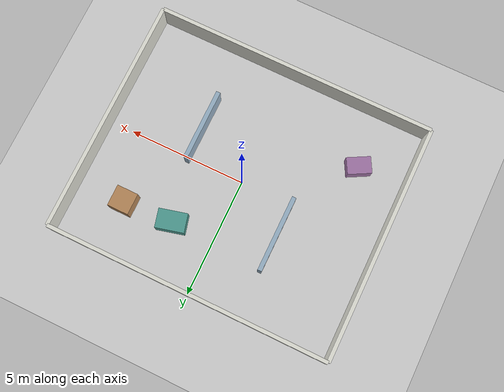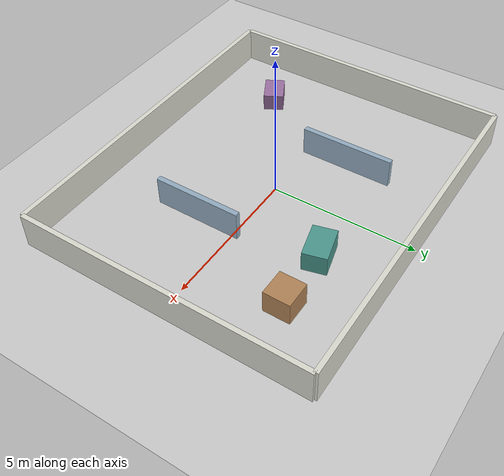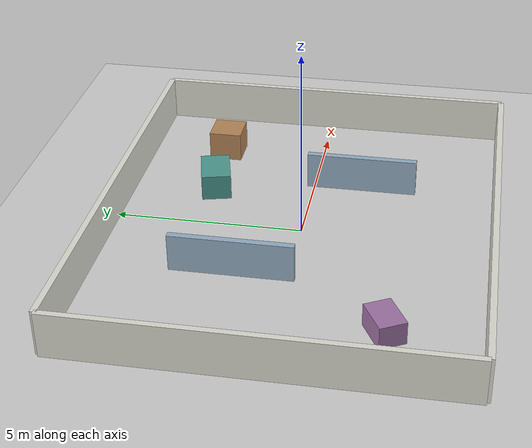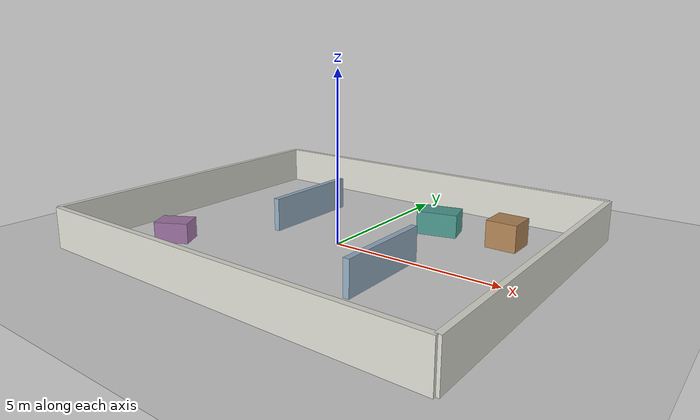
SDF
<?xml version="1.0"?>
<sdf version="1.6">
  <world name="large_bright_room">
    <include>
      <uri>model://ground_plane</uri>
    </include>

    <include>
      <uri>model://sun</uri>
    </include>

    <light name="soft_key_light" type="directional">
      <cast_shadows>false</cast_shadows>
      <pose>-4 -3 8 0.4 0.55 0.6</pose>
      <diffuse>0.95 0.95 0.90 1</diffuse>
      <specular>0.20 0.20 0.18 1</specular>
      <direction>0.35 0.45 -1</direction>
    </light>

    <scene>
      <shadows>false</shadows>
      <ambient>0.78 0.78 0.76 1</ambient>
      <background>0.82 0.88 0.94 1</background>
    </scene>

    <gui fullscreen="0">
      <camera name="user_camera">
        <pose frame="">0 -1.0 14.0 0 1.35 1.57</pose>
        <view_controller>orbit</view_controller>
        <projection_type>perspective</projection_type>
      </camera>
    </gui>

    <physics type="ode">
      <real_time_update_rate>1000.0</real_time_update_rate>
      <max_step_size>0.001</max_step_size>
      <real_time_factor>1</real_time_factor>
    </physics>

    <model name="north_wall">
      <static>true</static>
      <pose>0 5 0.6 0 0 0</pose>
      <link name="link">
        <collision name="collision">
          <geometry><box><size>12 0.16 1.2</size></box></geometry>
        </collision>
        <visual name="visual">
          <geometry><box><size>12 0.16 1.2</size></box></geometry>
          <material>
            <ambient>0.86 0.86 0.82 1</ambient>
            <diffuse>0.86 0.86 0.82 1</diffuse>
          </material>
        </visual>
      </link>
    </model>

    <model name="south_wall">
      <static>true</static>
      <pose>0 -5 0.6 0 0 0</pose>
      <link name="link">
        <collision name="collision">
          <geometry><box><size>12 0.16 1.2</size></box></geometry>
        </collision>
        <visual name="visual">
          <geometry><box><size>12 0.16 1.2</size></box></geometry>
          <material>
            <ambient>0.86 0.86 0.82 1</ambient>
            <diffuse>0.86 0.86 0.82 1</diffuse>
          </material>
        </visual>
      </link>
    </model>

    <model name="east_wall">
      <static>true</static>
      <pose>6 0 0.6 0 0 0</pose>
      <link name="link">
        <collision name="collision">
          <geometry><box><size>0.16 10 1.2</size></box></geometry>
        </collision>
        <visual name="visual">
          <geometry><box><size>0.16 10 1.2</size></box></geometry>
          <material>
            <ambient>0.86 0.86 0.82 1</ambient>
            <diffuse>0.86 0.86 0.82 1</diffuse>
          </material>
        </visual>
      </link>
    </model>

    <model name="west_wall">
      <static>true</static>
      <pose>-6 0 0.6 0 0 0</pose>
      <link name="link">
        <collision name="collision">
          <geometry><box><size>0.16 10 1.2</size></box></geometry>
        </collision>
        <visual name="visual">
          <geometry><box><size>0.16 10 1.2</size></box></geometry>
          <material>
            <ambient>0.86 0.86 0.82 1</ambient>
            <diffuse>0.86 0.86 0.82 1</diffuse>
          </material>
        </visual>
      </link>
    </model>

    <model name="left_partition">
      <static>true</static>
      <pose>-2.2 1.4 0.5 0 0 0</pose>
      <link name="link">
        <collision name="collision">
          <geometry><box><size>0.18 3.2 1.0</size></box></geometry>
        </collision>
        <visual name="visual">
          <geometry><box><size>0.18 3.2 1.0</size></box></geometry>
          <material>
            <ambient>0.58 0.68 0.76 1</ambient>
            <diffuse>0.58 0.68 0.76 1</diffuse>
          </material>
        </visual>
      </link>
    </model>

    <model name="right_partition">
      <static>true</static>
      <pose>2.4 -1.3 0.5 0 0 0</pose>
      <link name="link">
        <collision name="collision">
          <geometry><box><size>0.18 3.0 1.0</size></box></geometry>
        </collision>
        <visual name="visual">
          <geometry><box><size>0.18 3.0 1.0</size></box></geometry>
          <material>
            <ambient>0.58 0.68 0.76 1</ambient>
            <diffuse>0.58 0.68 0.76 1</diffuse>
          </material>
        </visual>
      </link>
    </model>

    <model name="center_table">
      <static>true</static>
      <pose>1.8 2.7 0.35 0 0 0.25</pose>
      <link name="link">
        <collision name="collision">
          <geometry><box><size>1.2 0.8 0.7</size></box></geometry>
        </collision>
        <visual name="visual">
          <geometry><box><size>1.2 0.8 0.7</size></box></geometry>
          <material>
            <ambient>0.30 0.60 0.56 1</ambient>
            <diffuse>0.30 0.60 0.56 1</diffuse>
          </material>
        </visual>
      </link>
    </model>

    <model name="north_box">
      <static>true</static>
      <pose>3.9 2.8 0.4 0 0 0.0</pose>
      <link name="link">
        <collision name="collision">
          <geometry><box><size>0.9 0.9 0.8</size></box></geometry>
        </collision>
        <visual name="visual">
          <geometry><box><size>0.9 0.9 0.8</size></box></geometry>
          <material>
            <ambient>0.70 0.52 0.34 1</ambient>
            <diffuse>0.70 0.52 0.34 1</diffuse>
          </material>
        </visual>
      </link>
    </model>

    <model name="south_box">
      <static>true</static>
      <pose>-4.0 -2.6 0.3 0 0 0.5</pose>
      <link name="link">
        <collision name="collision">
          <geometry><box><size>1.0 0.7 0.6</size></box></geometry>
        </collision>
        <visual name="visual">
          <geometry><box><size>1.0 0.7 0.6</size></box></geometry>
          <material>
            <ambient>0.62 0.45 0.64 1</ambient>
            <diffuse>0.62 0.45 0.64 1</diffuse>
          </material>
        </visual>
      </link>
    </model>
  </world>
</sdf>
